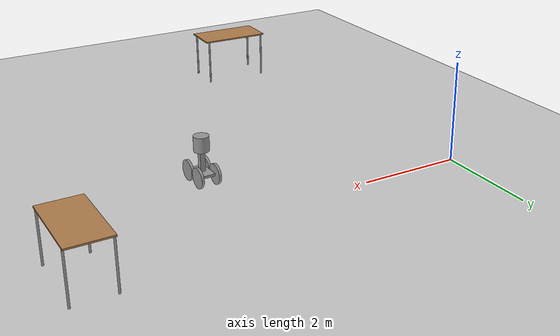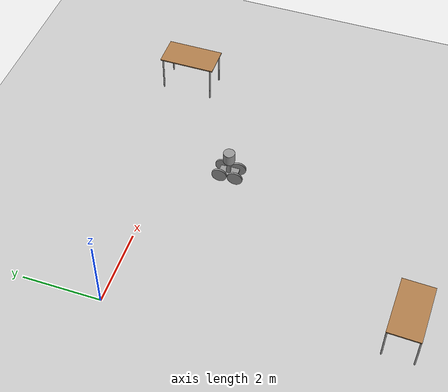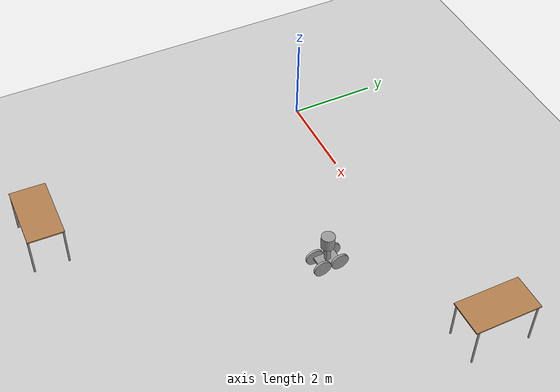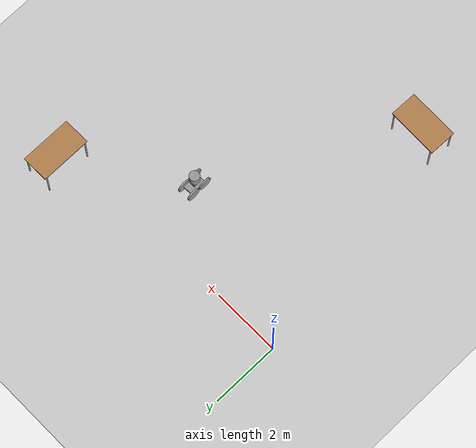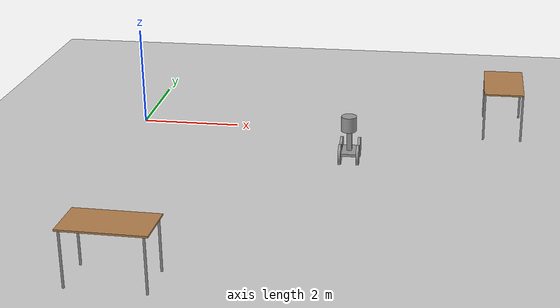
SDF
<sdf version="1.6">
 <world name="default">
  <model name="ground_plane">
   <static>1</static>
   <link name="link">
    <collision name="collision">
     <geometry><plane><normal>0 0 1</normal><size>100 100</size></plane></geometry>
     <surface><friction><ode><mu>100</mu><mu2>50</mu2></ode></friction></surface>
    </collision>
    <visual name="visual">
     <cast_shadows>0</cast_shadows>
     <geometry><plane><normal>0 0 1</normal><size>100 100</size></plane></geometry>
     <material>
      <script><uri>file://media/materials/scripts/gazebo.material</uri><name>Gazebo/Grey</name></script>
     </material>
    </visual>
   </link>
  </model>
  <model name="table_clone">
   <static>1</static>
   <link name="link">
    <collision name="surface">
     <pose>0 0 1 0 -0 0</pose>
     <geometry><box><size>1.5 0.8 0.03</size></box></geometry>
     <surface><friction><ode><mu>0.6</mu><mu2>0.6</mu2></ode></friction></surface>
    </collision>
    <visual name="visual1">
     <pose>0 0 1 0 -0 0</pose>
     <geometry><box><size>1.5 0.8 0.03</size></box></geometry>
     <material>
      <script><uri>file://media/materials/scripts/gazebo.material</uri><name>Gazebo/Wood</name></script>
     </material>
    </visual>
    <collision name="front_left_leg">
     <pose>0.68 0.38 0.5 0 -0 0</pose>
     <geometry><cylinder><radius>0.02</radius><length>1</length></cylinder></geometry>
    </collision>
    <visual name="front_left_leg">
     <pose>0.68 0.38 0.5 0 -0 0</pose>
     <geometry><cylinder><radius>0.02</radius><length>1</length></cylinder></geometry>
     <material>
      <script><uri>file://media/materials/scripts/gazebo.material</uri><name>Gazebo/Grey</name></script>
     </material>
    </visual>
    <collision name="front_right_leg">
     <pose>0.68 -0.38 0.5 0 -0 0</pose>
     <geometry><cylinder><radius>0.02</radius><length>1</length></cylinder></geometry>
    </collision>
    <visual name="front_right_leg">
     <pose>0.68 -0.38 0.5 0 -0 0</pose>
     <geometry><cylinder><radius>0.02</radius><length>1</length></cylinder></geometry>
     <material>
      <script><uri>file://media/materials/scripts/gazebo.material</uri><name>Gazebo/Grey</name></script>
     </material>
    </visual>
    <collision name="back_right_leg">
     <pose>-0.68 -0.38 0.5 0 -0 0</pose>
     <geometry><cylinder><radius>0.02</radius><length>1</length></cylinder></geometry>
    </collision>
    <visual name="back_right_leg">
     <pose>-0.68 -0.38 0.5 0 -0 0</pose>
     <geometry><cylinder><radius>0.02</radius><length>1</length></cylinder></geometry>
     <material>
      <script><uri>file://media/materials/scripts/gazebo.material</uri><name>Gazebo/Grey</name></script>
     </material>
    </visual>
    <collision name="back_left_leg">
     <pose>-0.68 0.38 0.5 0 -0 0</pose>
     <geometry><cylinder><radius>0.02</radius><length>1</length></cylinder></geometry>
    </collision>
    <visual name="back_left_leg">
     <pose>-0.68 0.38 0.5 0 -0 0</pose>
     <geometry><cylinder><radius>0.02</radius><length>1</length></cylinder></geometry>
     <material>
      <script><uri>file://media/materials/scripts/gazebo.material</uri><name>Gazebo/Grey</name></script>
     </material>
    </visual>
   </link>
   <pose>7.5802 0.509102 0 0 -0 1.57261</pose>
  </model>
  <model name="table_clone_4">
   <static>1</static>
   <link name="link">
    <collision name="surface">
     <pose>0 0 1 0 -0 0</pose>
     <geometry><box><size>1.5 0.8 0.03</size></box></geometry>
     <surface><friction><ode><mu>0.6</mu><mu2>0.6</mu2></ode></friction></surface>
    </collision>
    <visual name="visual1">
     <pose>0 0 1 0 -0 0</pose>
     <geometry><box><size>1.5 0.8 0.03</size></box></geometry>
     <material>
      <script><uri>file://media/materials/scripts/gazebo.material</uri><name>Gazebo/Wood</name></script>
     </material>
    </visual>
    <collision name="front_left_leg">
     <pose>0.68 0.38 0.5 0 -0 0</pose>
     <geometry><cylinder><radius>0.02</radius><length>1</length></cylinder></geometry>
    </collision>
    <visual name="front_left_leg">
     <pose>0.68 0.38 0.5 0 -0 0</pose>
     <geometry><cylinder><radius>0.02</radius><length>1</length></cylinder></geometry>
     <material>
      <script><uri>file://media/materials/scripts/gazebo.material</uri><name>Gazebo/Grey</name></script>
     </material>
    </visual>
    <collision name="front_right_leg">
     <pose>0.68 -0.38 0.5 0 -0 0</pose>
     <geometry><cylinder><radius>0.02</radius><length>1</length></cylinder></geometry>
    </collision>
    <visual name="front_right_leg">
     <pose>0.68 -0.38 0.5 0 -0 0</pose>
     <geometry><cylinder><radius>0.02</radius><length>1</length></cylinder></geometry>
     <material>
      <script><uri>file://media/materials/scripts/gazebo.material</uri><name>Gazebo/Grey</name></script>
     </material>
    </visual>
    <collision name="back_right_leg">
     <pose>-0.68 -0.38 0.5 0 -0 0</pose>
     <geometry><cylinder><radius>0.02</radius><length>1</length></cylinder></geometry>
    </collision>
    <visual name="back_right_leg">
     <pose>-0.68 -0.38 0.5 0 -0 0</pose>
     <geometry><cylinder><radius>0.02</radius><length>1</length></cylinder></geometry>
     <material>
      <script><uri>file://media/materials/scripts/gazebo.material</uri><name>Gazebo/Grey</name></script>
     </material>
    </visual>
    <collision name="back_left_leg">
     <pose>-0.68 0.38 0.5 0 -0 0</pose>
     <geometry><cylinder><radius>0.02</radius><length>1</length></cylinder></geometry>
    </collision>
    <visual name="back_left_leg">
     <pose>-0.68 0.38 0.5 0 -0 0</pose>
     <geometry><cylinder><radius>0.02</radius><length>1</length></cylinder></geometry>
     <material>
      <script><uri>file://media/materials/scripts/gazebo.material</uri><name>Gazebo/Grey</name></script>
     </material>
    </visual>
   </link>
   <pose>1.42784 -6.87779 0 0 0 -0.026226</pose>
  </model>
  <model name="model4_clone">
   <link name="link_0">
    <pose>0.000599 0.000833 0.1625 0 -0 0</pose>
    <inertial>
     <mass>1</mass>
     <inertia>
      <ixx>0.166667</ixx>
      <ixy>0</ixy>
      <ixz>0</ixz>
      <iyy>0.166667</iyy>
      <iyz>0</iyz>
      <izz>0.166667</izz>
     </inertia>
    </inertial>
    <visual name="visual">
     <geometry><box><size>0.5 0.3 0.05</size></box></geometry>
     <material>
      <lighting>1</lighting>
      <script><uri>file://media/materials/scripts/gazebo.material</uri><name>Gazebo/Grey</name></script>
      <shader type="pixel"><normal_map>__default__</normal_map></shader>
      <ambient>0.3 0.3 0.3 1</ambient>
      <diffuse>0.7 0.7 0.7 1</diffuse>
      <specular>0.01 0.01 0.01 1</specular>
      <emissive>0 0 0 1</emissive>
     </material>
    </visual>
    <collision name="collision">
     <geometry><box><size>0.5 0.3 0.05</size></box></geometry>
     <surface>
      <friction>
       <ode><mu>1</mu><mu2>1</mu2><fdir1>0 0 0</fdir1><slip1>0</slip1><slip2>0</slip2></ode>
       <torsional>
        <coefficient>1</coefficient>
        <patch_radius>0</patch_radius>
        <surface_radius>0</surface_radius>
        <use_patch_radius>1</use_patch_radius>
        <ode><slip>0</slip></ode>
       </torsional>
      </friction>
      <bounce><restitution_coefficient>0</restitution_coefficient><threshold>1e+06</threshold></bounce>
      <contact>
       <collide_without_contact>0</collide_without_contact>
       <collide_without_contact_bitmask>1</collide_without_contact_bitmask>
       <collide_bitmask>1</collide_bitmask>
       <ode>
        <soft_cfm>0</soft_cfm>
        <soft_erp>0.2</soft_erp>
        <kp>1e+13</kp>
        <kd>1</kd>
        <max_vel>0.01</max_vel>
        <min_depth>0</min_depth>
       </ode>
       <bullet>
        <split_impulse>1</split_impulse>
        <split_impulse_penetration_threshold>-0.01</split_impulse_penetration_threshold>
        <soft_cfm>0</soft_cfm>
        <soft_erp>0.2</soft_erp>
        <kp>1e+13</kp>
        <kd>1</kd>
       </bullet>
      </contact>
     </surface>
    </collision>
   </link>
   <link name="link_1">
    <pose>-0.209401 0.175852 0.1625 1.5707 -0 0</pose>
    <inertial>
     <mass>1</mass>
     <inertia><ixx>0.145833</ixx><ixy>0</ixy><ixz>0</ixz><iyy>0.145833</iyy><iyz>0</iyz><izz>0.125</izz></inertia>
    </inertial>
    <visual name="visual">
     <geometry><cylinder><radius>0.2</radius><length>0.05</length></cylinder></geometry>
     <material>
      <lighting>1</lighting>
      <script><uri>file://media/materials/scripts/gazebo.material</uri><name>Gazebo/Grey</name></script>
      <shader type="pixel"><normal_map>__default__</normal_map></shader>
      <ambient>0.3 0.3 0.3 1</ambient>
      <diffuse>0.7 0.7 0.7 1</diffuse>
      <specular>0.01 0.01 0.01 1</specular>
      <emissive>0 0 0 1</emissive>
     </material>
    </visual>
    <collision name="collision">
     <geometry><cylinder><radius>0.2</radius><length>0.05</length></cylinder></geometry>
     <surface>
      <friction>
       <ode><mu>1</mu><mu2>1</mu2><fdir1>0 0 0</fdir1><slip1>0</slip1><slip2>0</slip2></ode>
       <torsional>
        <coefficient>1</coefficient>
        <patch_radius>0</patch_radius>
        <surface_radius>0</surface_radius>
        <use_patch_radius>1</use_patch_radius>
        <ode><slip>0</slip></ode>
       </torsional>
      </friction>
      <bounce><restitution_coefficient>0</restitution_coefficient><threshold>1e+06</threshold></bounce>
      <contact>
       <collide_without_contact>0</collide_without_contact>
       <collide_without_contact_bitmask>1</collide_without_contact_bitmask>
       <collide_bitmask>1</collide_bitmask>
       <ode>
        <soft_cfm>0</soft_cfm>
        <soft_erp>0.2</soft_erp>
        <kp>1e+13</kp>
        <kd>1</kd>
        <max_vel>0.01</max_vel>
        <min_depth>0</min_depth>
       </ode>
       <bullet>
        <split_impulse>1</split_impulse>
        <split_impulse_penetration_threshold>-0.01</split_impulse_penetration_threshold>
        <soft_cfm>0</soft_cfm>
        <soft_erp>0.2</soft_erp>
        <kp>1e+13</kp>
        <kd>1</kd>
       </bullet>
      </contact>
     </surface>
    </collision>
   </link>
   <link name="link_1_clone">
    <pose>0.210599 0.175852 0.1625 1.5707 -0 0</pose>
    <inertial>
     <mass>1</mass>
     <inertia><ixx>0.145833</ixx><ixy>0</ixy><ixz>0</ixz><iyy>0.145833</iyy><iyz>0</iyz><izz>0.125</izz></inertia>
    </inertial>
    <visual name="visual">
     <geometry><cylinder><radius>0.2</radius><length>0.05</length></cylinder></geometry>
     <material>
      <lighting>1</lighting>
      <script><uri>file://media/materials/scripts/gazebo.material</uri><name>Gazebo/Grey</name></script>
      <shader type="pixel"><normal_map>__default__</normal_map></shader>
      <ambient>0.3 0.3 0.3 1</ambient>
      <diffuse>0.7 0.7 0.7 1</diffuse>
      <specular>0.01 0.01 0.01 1</specular>
      <emissive>0 0 0 1</emissive>
     </material>
    </visual>
    <collision name="collision">
     <geometry><cylinder><radius>0.2</radius><length>0.05</length></cylinder></geometry>
     <surface>
      <friction>
       <ode><mu>1</mu><mu2>1</mu2><fdir1>0 0 0</fdir1><slip1>0</slip1><slip2>0</slip2></ode>
       <torsional>
        <coefficient>1</coefficient>
        <patch_radius>0</patch_radius>
        <surface_radius>0</surface_radius>
        <use_patch_radius>1</use_patch_radius>
        <ode><slip>0</slip></ode>
       </torsional>
      </friction>
      <bounce><restitution_coefficient>0</restitution_coefficient><threshold>1e+06</threshold></bounce>
      <contact>
       <collide_without_contact>0</collide_without_contact>
       <collide_without_contact_bitmask>1</collide_without_contact_bitmask>
       <collide_bitmask>1</collide_bitmask>
       <ode>
        <soft_cfm>0</soft_cfm>
        <soft_erp>0.2</soft_erp>
        <kp>1e+13</kp>
        <kd>1</kd>
        <max_vel>0.01</max_vel>
        <min_depth>0</min_depth>
       </ode>
       <bullet>
        <split_impulse>1</split_impulse>
        <split_impulse_penetration_threshold>-0.01</split_impulse_penetration_threshold>
        <soft_cfm>0</soft_cfm>
        <soft_erp>0.2</soft_erp>
        <kp>1e+13</kp>
        <kd>1</kd>
       </bullet>
      </contact>
     </surface>
    </collision>
   </link>
   <link name="link_1_clone_0">
    <pose>0.2106 -0.174186 0.1625 1.5707 -0 0</pose>
    <inertial>
     <mass>1</mass>
     <inertia><ixx>0.145833</ixx><ixy>0</ixy><ixz>0</ixz><iyy>0.145833</iyy><iyz>0</iyz><izz>0.125</izz></inertia>
    </inertial>
    <visual name="visual">
     <geometry><cylinder><radius>0.2</radius><length>0.05</length></cylinder></geometry>
     <material>
      <lighting>1</lighting>
      <script><uri>file://media/materials/scripts/gazebo.material</uri><name>Gazebo/Grey</name></script>
      <shader type="pixel"><normal_map>__default__</normal_map></shader>
      <ambient>0.3 0.3 0.3 1</ambient>
      <diffuse>0.7 0.7 0.7 1</diffuse>
      <specular>0.01 0.01 0.01 1</specular>
      <emissive>0 0 0 1</emissive>
     </material>
    </visual>
    <collision name="collision">
     <geometry><cylinder><radius>0.2</radius><length>0.05</length></cylinder></geometry>
     <surface>
      <friction>
       <ode><mu>1</mu><mu2>1</mu2><fdir1>0 0 0</fdir1><slip1>0</slip1><slip2>0</slip2></ode>
       <torsional>
        <coefficient>1</coefficient>
        <patch_radius>0</patch_radius>
        <surface_radius>0</surface_radius>
        <use_patch_radius>1</use_patch_radius>
        <ode><slip>0</slip></ode>
       </torsional>
      </friction>
      <bounce><restitution_coefficient>0</restitution_coefficient><threshold>1e+06</threshold></bounce>
      <contact>
       <collide_without_contact>0</collide_without_contact>
       <collide_without_contact_bitmask>1</collide_without_contact_bitmask>
       <collide_bitmask>1</collide_bitmask>
       <ode>
        <soft_cfm>0</soft_cfm>
        <soft_erp>0.2</soft_erp>
        <kp>1e+13</kp>
        <kd>1</kd>
        <max_vel>0.01</max_vel>
        <min_depth>0</min_depth>
       </ode>
       <bullet>
        <split_impulse>1</split_impulse>
        <split_impulse_penetration_threshold>-0.01</split_impulse_penetration_threshold>
        <soft_cfm>0</soft_cfm>
        <soft_erp>0.2</soft_erp>
        <kp>1e+13</kp>
        <kd>1</kd>
       </bullet>
      </contact>
     </surface>
    </collision>
   </link>
   <link name="link_1_clone_1">
    <pose>-0.2094 -0.174186 0.1625 1.5707 -0 0</pose>
    <inertial>
     <mass>1</mass>
     <inertia><ixx>0.145833</ixx><ixy>0</ixy><ixz>0</ixz><iyy>0.145833</iyy><iyz>0</iyz><izz>0.125</izz></inertia>
    </inertial>
    <visual name="visual">
     <geometry><cylinder><radius>0.2</radius><length>0.05</length></cylinder></geometry>
     <material>
      <lighting>1</lighting>
      <script><uri>file://media/materials/scripts/gazebo.material</uri><name>Gazebo/Grey</name></script>
      <shader type="pixel"><normal_map>__default__</normal_map></shader>
      <ambient>0.3 0.3 0.3 1</ambient>
      <diffuse>0.7 0.7 0.7 1</diffuse>
      <specular>0.01 0.01 0.01 1</specular>
      <emissive>0 0 0 1</emissive>
     </material>
    </visual>
    <collision name="collision">
     <geometry><cylinder><radius>0.2</radius><length>0.05</length></cylinder></geometry>
     <surface>
      <friction>
       <ode><mu>1</mu><mu2>1</mu2><fdir1>0 0 0</fdir1><slip1>0</slip1><slip2>0</slip2></ode>
       <torsional>
        <coefficient>1</coefficient>
        <patch_radius>0</patch_radius>
        <surface_radius>0</surface_radius>
        <use_patch_radius>1</use_patch_radius>
        <ode><slip>0</slip></ode>
       </torsional>
      </friction>
      <bounce><restitution_coefficient>0</restitution_coefficient><threshold>1e+06</threshold></bounce>
      <contact>
       <collide_without_contact>0</collide_without_contact>
       <collide_without_contact_bitmask>1</collide_without_contact_bitmask>
       <collide_bitmask>1</collide_bitmask>
       <ode>
        <soft_cfm>0</soft_cfm>
        <soft_erp>0.2</soft_erp>
        <kp>1e+13</kp>
        <kd>1</kd>
        <max_vel>0.01</max_vel>
        <min_depth>0</min_depth>
       </ode>
       <bullet>
        <split_impulse>1</split_impulse>
        <split_impulse_penetration_threshold>-0.01</split_impulse_penetration_threshold>
        <soft_cfm>0</soft_cfm>
        <soft_erp>0.2</soft_erp>
        <kp>1e+13</kp>
        <kd>1</kd>
       </bullet>
      </contact>
     </surface>
    </collision>
   </link>
   <link name="link_2">
    <pose>-0.002997 -0.004167 0.3875 0 -0 0</pose>
    <inertial>
     <mass>1</mass>
     <inertia>
      <ixx>0.166667</ixx>
      <ixy>0</ixy>
      <ixz>0</ixz>
      <iyy>0.166667</iyy>
      <iyz>0</iyz>
      <izz>0.166667</izz>
     </inertia>
    </inertial>
    <visual name="visual">
     <geometry><box><size>0.1 0.1 0.4</size></box></geometry>
     <material>
      <lighting>1</lighting>
      <script><uri>file://media/materials/scripts/gazebo.material</uri><name>Gazebo/Grey</name></script>
      <shader type="pixel"><normal_map>__default__</normal_map></shader>
      <ambient>0.3 0.3 0.3 1</ambient>
      <diffuse>0.7 0.7 0.7 1</diffuse>
      <specular>0.01 0.01 0.01 1</specular>
      <emissive>0 0 0 1</emissive>
     </material>
    </visual>
    <collision name="collision">
     <geometry><box><size>0.1 0.1 0.4</size></box></geometry>
     <surface>
      <friction>
       <ode><mu>1</mu><mu2>1</mu2><fdir1>0 0 0</fdir1><slip1>0</slip1><slip2>0</slip2></ode>
       <torsional>
        <coefficient>1</coefficient>
        <patch_radius>0</patch_radius>
        <surface_radius>0</surface_radius>
        <use_patch_radius>1</use_patch_radius>
        <ode><slip>0</slip></ode>
       </torsional>
      </friction>
      <bounce><restitution_coefficient>0</restitution_coefficient><threshold>1e+06</threshold></bounce>
      <contact>
       <collide_without_contact>0</collide_without_contact>
       <collide_without_contact_bitmask>1</collide_without_contact_bitmask>
       <collide_bitmask>1</collide_bitmask>
       <ode>
        <soft_cfm>0</soft_cfm>
        <soft_erp>0.2</soft_erp>
        <kp>1e+13</kp>
        <kd>1</kd>
        <max_vel>0.01</max_vel>
        <min_depth>0</min_depth>
       </ode>
       <bullet>
        <split_impulse>1</split_impulse>
        <split_impulse_penetration_threshold>-0.01</split_impulse_penetration_threshold>
        <soft_cfm>0</soft_cfm>
        <soft_erp>0.2</soft_erp>
        <kp>1e+13</kp>
        <kd>1</kd>
       </bullet>
      </contact>
     </surface>
    </collision>
   </link>
   <link name="link_3">
    <pose>0.002003 -0.014167 0.7375 0 -0 0</pose>
    <inertial>
     <mass>1</mass>
     <inertia><ixx>0.145833</ixx><ixy>0</ixy><ixz>0</ixz><iyy>0.145833</iyy><iyz>0</iyz><izz>0.125</izz></inertia>
    </inertial>
    <visual name="visual">
     <geometry><cylinder><radius>0.15</radius><length>0.3</length></cylinder></geometry>
     <material>
      <lighting>1</lighting>
      <script><uri>file://media/materials/scripts/gazebo.material</uri><name>Gazebo/Grey</name></script>
      <shader type="pixel"><normal_map>__default__</normal_map></shader>
      <ambient>0.3 0.3 0.3 1</ambient>
      <diffuse>0.7 0.7 0.7 1</diffuse>
      <specular>0.01 0.01 0.01 1</specular>
      <emissive>0 0 0 1</emissive>
     </material>
    </visual>
    <collision name="collision">
     <geometry><cylinder><radius>0.15</radius><length>0.3</length></cylinder></geometry>
     <surface>
      <friction>
       <ode><mu>1</mu><mu2>1</mu2><fdir1>0 0 0</fdir1><slip1>0</slip1><slip2>0</slip2></ode>
       <torsional>
        <coefficient>1</coefficient>
        <patch_radius>0</patch_radius>
        <surface_radius>0</surface_radius>
        <use_patch_radius>1</use_patch_radius>
        <ode><slip>0</slip></ode>
       </torsional>
      </friction>
      <bounce><restitution_coefficient>0</restitution_coefficient><threshold>1e+06</threshold></bounce>
      <contact>
       <collide_without_contact>0</collide_without_contact>
       <collide_without_contact_bitmask>1</collide_without_contact_bitmask>
       <collide_bitmask>1</collide_bitmask>
       <ode>
        <soft_cfm>0</soft_cfm>
        <soft_erp>0.2</soft_erp>
        <kp>1e+13</kp>
        <kd>1</kd>
        <max_vel>0.01</max_vel>
        <min_depth>0</min_depth>
       </ode>
       <bullet>
        <split_impulse>1</split_impulse>
        <split_impulse_penetration_threshold>-0.01</split_impulse_penetration_threshold>
        <soft_cfm>0</soft_cfm>
        <soft_erp>0.2</soft_erp>
        <kp>1e+13</kp>
        <kd>1</kd>
       </bullet>
      </contact>
     </surface>
    </collision>
   </link>
   <joint name="link_0_JOINT_0" type="revolute">
    <parent>link_0</parent>
    <child>link_1_clone</child>
    <axis>
     <xyz>0 0 1</xyz>
     <use_parent_model_frame>0</use_parent_model_frame>
     <limit>
      <lower>-1.79769e+308</lower>
      <upper>1.79769e+308</upper>
      <effort>-1</effort>
      <velocity>-1</velocity>
     </limit>
     <dynamics>
      <spring_reference>0</spring_reference>
      <spring_stiffness>0</spring_stiffness>
      <damping>0</damping>
     </dynamics>
    </axis>
    <physics>
     <ode><limit><cfm>0</cfm><erp>0.2</erp></limit><suspension><cfm>0</cfm><erp>0.2</erp></suspension></ode>
    </physics>
   </joint>
   <joint name="link_0_JOINT_1" type="revolute">
    <parent>link_0</parent>
    <child>link_1</child>
    <axis>
     <xyz>0 0 1</xyz>
     <use_parent_model_frame>0</use_parent_model_frame>
     <limit>
      <lower>-1.79769e+308</lower>
      <upper>1.79769e+308</upper>
      <effort>-1</effort>
      <velocity>-1</velocity>
     </limit>
     <dynamics>
      <spring_reference>0</spring_reference>
      <spring_stiffness>0</spring_stiffness>
      <damping>0</damping>
     </dynamics>
    </axis>
    <physics>
     <ode><limit><cfm>0</cfm><erp>0.2</erp></limit><suspension><cfm>0</cfm><erp>0.2</erp></suspension></ode>
    </physics>
   </joint>
   <joint name="link_0_JOINT_2" type="revolute">
    <parent>link_0</parent>
    <child>link_1_clone_1</child>
    <axis>
     <xyz>0 0 1</xyz>
     <use_parent_model_frame>0</use_parent_model_frame>
     <limit>
      <lower>-1.79769e+308</lower>
      <upper>1.79769e+308</upper>
      <effort>-1</effort>
      <velocity>-1</velocity>
     </limit>
     <dynamics>
      <spring_reference>0</spring_reference>
      <spring_stiffness>0</spring_stiffness>
      <damping>0</damping>
     </dynamics>
    </axis>
    <physics>
     <ode><limit><cfm>0</cfm><erp>0.2</erp></limit><suspension><cfm>0</cfm><erp>0.2</erp></suspension></ode>
    </physics>
   </joint>
   <joint name="link_0_JOINT_3" type="revolute">
    <parent>link_0</parent>
    <child>link_1_clone_0</child>
    <axis>
     <xyz>0 0 1</xyz>
     <use_parent_model_frame>0</use_parent_model_frame>
     <limit>
      <lower>-1.79769e+308</lower>
      <upper>1.79769e+308</upper>
      <effort>-1</effort>
      <velocity>-1</velocity>
     </limit>
     <dynamics>
      <spring_reference>0</spring_reference>
      <spring_stiffness>0</spring_stiffness>
      <damping>0</damping>
     </dynamics>
    </axis>
    <physics>
     <ode><limit><cfm>0</cfm><erp>0.2</erp></limit><suspension><cfm>0</cfm><erp>0.2</erp></suspension></ode>
    </physics>
   </joint>
   <joint name="link_0_JOINT_4" type="fixed">
    <parent>link_0</parent>
    <child>link_2</child>
    <physics>
     <ode><limit><cfm>0</cfm><erp>0.2</erp></limit><suspension><cfm>0</cfm><erp>0.2</erp></suspension></ode>
    </physics>
   </joint>
   <joint name="link_2_JOINT_5" type="fixed">
    <parent>link_2</parent>
    <child>link_3</child>
    <physics>
     <ode><limit><cfm>0</cfm><erp>0.2</erp></limit><suspension><cfm>0</cfm><erp>0.2</erp></suspension></ode>
    </physics>
   </joint>
   <static>0</static>
   <pose>4.58982 -1.60727 0.0375 -2e-06 -1.4e-05 -1.54107</pose>
  </model>
 </world>
</sdf>
